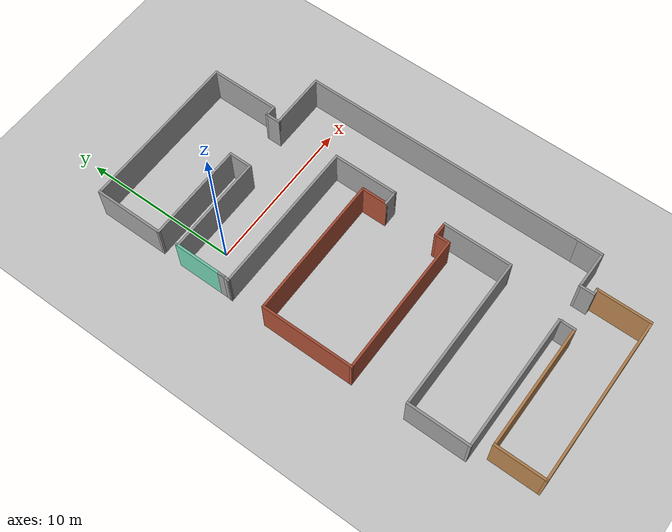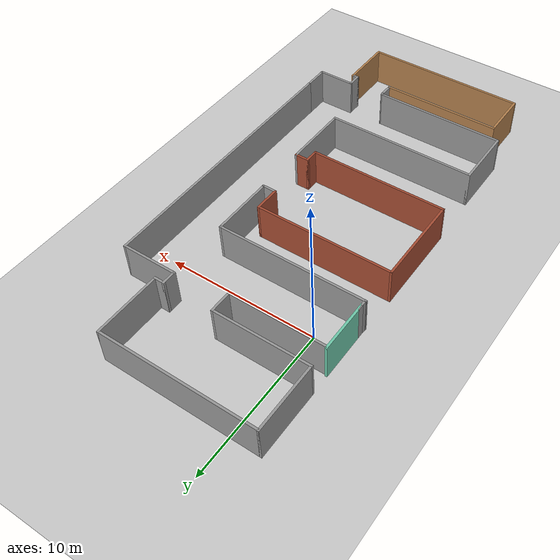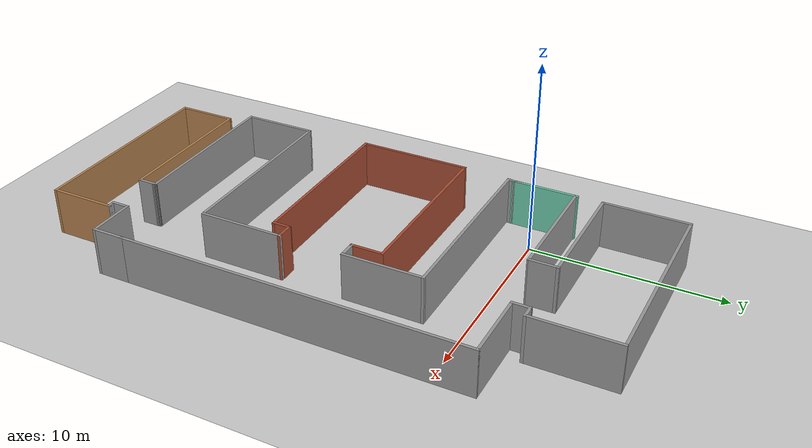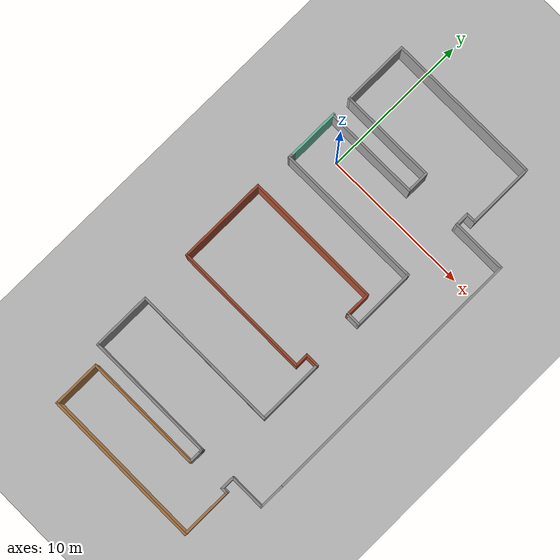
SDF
<sdf version="1.7">
 <world name="lab_world">
  <gravity>0 0 -9.8</gravity>
  <model name="ground_plane">
   <static>1</static>
   <link name="link">
    <collision name="collision">
     <geometry><plane><normal>0 0 1</normal><size>100 100</size></plane></geometry>
     <surface><friction><ode><mu>100</mu><mu2>50</mu2></ode></friction></surface>
    </collision>
    <visual name="visual">
     <cast_shadows>0</cast_shadows>
     <geometry><plane><normal>0 0 1</normal><size>100 100</size></plane></geometry>
     <material>
      <script><uri>file://media/materials/scripts/gazebo.material</uri><name>Gazebo/Grey</name></script>
     </material>
    </visual>
   </link>
  </model>
  <light name="sun" type="directional">
   <pose>0 0 10 0 -0 0</pose>
   <diffuse>0.8 0.8 0.8 1</diffuse>
   <specular>0.2 0.2 0.2 1</specular>
   <attenuation>
    <range>1000</range>
    <constant>0.9</constant>
    <linear>0.01</linear>
    <quadratic>0.001</quadratic>
   </attenuation>
   <direction>-0.5 0.1 -0.9</direction>
   <spot><inner_angle>0</inner_angle><outer_angle>0</outer_angle><falloff>0</falloff></spot>
  </light>
  <magnetic_field>6e-06 2.3e-05 -4.2e-05</magnetic_field>
  <atmosphere type="adiabatic"/>
  <physics type="ode">
   <max_step_size>0.001</max_step_size>
   <real_time_factor>1</real_time_factor>
   <real_time_update_rate>1000</real_time_update_rate>
  </physics>
  <scene><ambient>0.4 0.4 0.4 1</ambient><background>0.7 0.7 0.7 1</background><shadows>1</shadows></scene>
  <spherical_coordinates>
   <surface_model>EARTH_WGS84</surface_model>
   <latitude_deg>0</latitude_deg>
   <longitude_deg>0</longitude_deg>
   <elevation>0</elevation>
   <heading_deg>0</heading_deg>
  </spherical_coordinates>
  <model name="env03">
   <pose>4.66706 -7.23279 0 0 -0 0</pose>
   <link name="Wall_11">
    <collision name="Wall_11_Collision">
     <geometry><box><size>4.5 0.15 2.5</size></box></geometry>
     <pose>0 0 1.25 0 -0 0</pose>
    </collision>
    <visual name="Wall_11_Visual">
     <pose>0 0 1.25 0 -0 0</pose>
     <geometry><box><size>4.5 0.15 2.5</size></box></geometry>
     <material>
      <script><uri>file://media/materials/scripts/gazebo.material</uri><name>Gazebo/Grey</name></script>
      <ambient>1 1 1 1</ambient>
     </material>
     <meta><layer>0</layer></meta>
    </visual>
    <pose>3.73794 12.375 0 0 -0 -1.5708</pose>
   </link>
   <link name="Wall_12">
    <collision name="Wall_12_Collision">
     <geometry><box><size>0.75 0.15 2.5</size></box></geometry>
     <pose>0 0 1.25 0 -0 0</pose>
    </collision>
    <visual name="Wall_12_Visual">
     <pose>0 0 1.25 0 -0 0</pose>
     <geometry><box><size>0.75 0.15 2.5</size></box></geometry>
     <material>
      <script><uri>file://media/materials/scripts/gazebo.material</uri><name>Gazebo/Grey</name></script>
      <ambient>1 1 1 1</ambient>
     </material>
     <meta><layer>0</layer></meta>
    </visual>
    <pose>3.43794 10.2 0 0 -0 3.14159</pose>
   </link>
   <link name="Wall_13">
    <collision name="Wall_13_Collision">
     <geometry><box><size>1 0.15 2.5</size></box></geometry>
     <pose>0 0 1.25 0 -0 0</pose>
    </collision>
    <visual name="Wall_13_Visual">
     <pose>0 0 1.25 0 -0 0</pose>
     <geometry><box><size>1 0.15 2.5</size></box></geometry>
     <material>
      <script><uri>file://media/materials/scripts/gazebo.material</uri><name>Gazebo/Grey</name></script>
      <ambient>1 1 1 1</ambient>
     </material>
     <meta><layer>0</layer></meta>
    </visual>
    <pose>3.13794 9.775 0 0 -0 -1.5708</pose>
   </link>
   <link name="Wall_14">
    <collision name="Wall_14_Collision">
     <geometry><box><size>3.75 0.15 2.5</size></box></geometry>
     <pose>0 0 1.25 0 -0 0</pose>
    </collision>
    <visual name="Wall_14_Visual">
     <pose>0 0 1.25 0 -0 0</pose>
     <geometry><box><size>3.75 0.15 2.5</size></box></geometry>
     <material>
      <script><uri>file://media/materials/scripts/gazebo.material</uri><name>Gazebo/Grey</name></script>
      <ambient>1 1 1 1</ambient>
     </material>
     <meta><layer>0</layer></meta>
    </visual>
    <pose>4.93794 9.35 0 0 -0 0</pose>
   </link>
   <link name="Wall_15">
    <collision name="Wall_15_Collision">
     <geometry><box><size>18.25 0.15 2.5</size></box></geometry>
     <pose>0 0 1.25 0 -0 0</pose>
    </collision>
    <visual name="Wall_15_Visual">
     <pose>0 0 1.25 0 -0 0</pose>
     <geometry><box><size>18.25 0.15 2.5</size></box></geometry>
     <material>
      <script><uri>file://media/materials/scripts/gazebo.material</uri><name>Gazebo/Grey</name></script>
      <ambient>1 1 1 1</ambient>
     </material>
     <meta><layer>0</layer></meta>
    </visual>
    <pose>6.73794 0.3 0 0 -0 -1.5708</pose>
   </link>
   <link name="Wall_16">
    <collision name="Wall_16_Collision">
     <geometry><box><size>1.75 0.15 2.5</size></box></geometry>
     <pose>0 0 1.25 0 -0 0</pose>
    </collision>
    <visual name="Wall_16_Visual">
     <pose>0 0 1.25 0 -0 0</pose>
     <geometry><box><size>1.75 0.15 2.5</size></box></geometry>
     <material>
      <script><uri>file://media/materials/scripts/gazebo.material</uri><name>Gazebo/Grey</name></script>
      <ambient>1 1 1 1</ambient>
     </material>
     <meta><layer>0</layer></meta>
    </visual>
    <pose>6.73794 -9.55 0 0 -0 -1.5708</pose>
   </link>
   <link name="Wall_17">
    <collision name="Wall_17_Collision">
     <geometry><box><size>2.5 0.15 2.5</size></box></geometry>
     <pose>0 0 1.25 0 -0 0</pose>
    </collision>
    <visual name="Wall_17_Visual">
     <pose>0 0 1.25 0 -0 0</pose>
     <geometry><box><size>2.5 0.15 2.5</size></box></geometry>
     <material>
      <script><uri>file://media/materials/scripts/gazebo.material</uri><name>Gazebo/Grey</name></script>
      <ambient>1 1 1 1</ambient>
     </material>
     <meta><layer>0</layer></meta>
    </visual>
    <pose>5.56294 -10.35 0 0 -0 3.14159</pose>
   </link>
   <link name="Wall_18">
    <collision name="Wall_18_Collision">
     <geometry><box><size>1 0.15 2.5</size></box></geometry>
     <pose>0 0 1.25 0 -0 0</pose>
    </collision>
    <visual name="Wall_18_Visual">
     <pose>0 0 1.25 0 -0 0</pose>
     <geometry><box><size>1 0.15 2.5</size></box></geometry>
     <material>
      <script><uri>file://media/materials/scripts/gazebo.material</uri><name>Gazebo/Grey</name></script>
      <ambient>1 1 1 1</ambient>
     </material>
     <meta><layer>0</layer></meta>
    </visual>
    <pose>4.38794 -10.775 0 0 -0 -1.5708</pose>
   </link>
   <link name="Wall_19">
    <collision name="Wall_19_Collision">
     <geometry><box><size>0.5 0.15 2.5</size></box></geometry>
     <pose>0 0 1.25 0 -0 0</pose>
    </collision>
    <visual name="Wall_19_Visual">
     <pose>0 0 1.25 0 -0 0</pose>
     <geometry><box><size>0.5 0.15 2.5</size></box></geometry>
     <material>
      <script><uri>file://media/materials/scripts/gazebo.material</uri><name>Gazebo/Grey</name></script>
      <ambient>1 1 1 1</ambient>
     </material>
     <meta><layer>0</layer></meta>
    </visual>
    <pose>4.56294 -11.2 0 0 -0 0</pose>
   </link>
   <link name="Wall_2">
    <collision name="Wall_2_Collision">
     <geometry><box><size>0.5 0.15 2.5</size></box></geometry>
     <pose>0 0 1.25 0 -0 0</pose>
    </collision>
    <visual name="Wall_2_Visual">
     <pose>0 0 1.25 0 -0 0</pose>
     <geometry><box><size>0.5 0.15 2.5</size></box></geometry>
     <material>
      <script><uri>file://media/materials/scripts/gazebo.material</uri><name>Gazebo/Grey</name></script>
      <ambient>1 1 1 1</ambient>
     </material>
     <meta><layer>0</layer></meta>
    </visual>
    <pose>-6.61206 5.675 0 0 -0 -1.5708</pose>
   </link>
   <link name="Wall_22">
    <collision name="Wall_22_Collision">
     <geometry><box><size>3.5 0.15 2.5</size></box></geometry>
     <pose>0 0 1.25 0 -0 0</pose>
    </collision>
    <visual name="Wall_22_Visual">
     <pose>0 0 1.25 0 -0 0</pose>
     <geometry><box><size>3.5 0.15 2.5</size></box></geometry>
     <material>
      <script><uri>file://media/materials/scripts/gazebo.material</uri><name>Gazebo/Wood</name></script>
      <ambient>1 1 1 1</ambient>
     </material>
     <meta><layer>0</layer></meta>
    </visual>
    <pose>4.73794 -12.875 0 0 -0 -1.5708</pose>
   </link>
   <link name="Wall_23">
    <collision name="Wall_23_Collision">
     <geometry><box><size>10.75 0.15 2.5</size></box></geometry>
     <pose>0 0 1.25 0 -0 0</pose>
    </collision>
    <visual name="Wall_23_Visual">
     <pose>0 0 1.25 0 -0 0</pose>
     <geometry><box><size>10.75 0.15 2.5</size></box></geometry>
     <material>
      <script><uri>file://media/materials/scripts/gazebo.material</uri><name>Gazebo/Wood</name></script>
      <ambient>1 1 1 1</ambient>
     </material>
     <meta><layer>0</layer></meta>
    </visual>
    <pose>-0.562059 -14.55 0 0 -0 3.14159</pose>
   </link>
   <link name="Wall_24">
    <collision name="Wall_24_Collision">
     <geometry><box><size>3.25 0.15 2.5</size></box></geometry>
     <pose>0 0 1.25 0 -0 0</pose>
    </collision>
    <visual name="Wall_24_Visual">
     <pose>0 0 1.25 0 -0 0</pose>
     <geometry><box><size>3.25 0.15 2.5</size></box></geometry>
     <material>
      <script><uri>file://media/materials/scripts/gazebo.material</uri><name>Gazebo/Wood</name></script>
      <ambient>1 1 1 1</ambient>
     </material>
     <meta><layer>0</layer></meta>
    </visual>
    <pose>-5.86206 -13 0 0 -0 1.5708</pose>
   </link>
   <link name="Wall_25">
    <collision name="Wall_25_Collision">
     <geometry><box><size>8 0.15 2.5</size></box></geometry>
     <pose>0 0 1.25 0 -0 0</pose>
    </collision>
    <visual name="Wall_25_Visual">
     <pose>0 0 1.25 0 -0 0</pose>
     <geometry><box><size>8 0.15 2.5</size></box></geometry>
     <material>
      <script><uri>file://media/materials/scripts/gazebo.material</uri><name>Gazebo/Wood</name></script>
      <ambient>1 1 1 1</ambient>
     </material>
     <meta><layer>0</layer></meta>
    </visual>
    <pose>-1.93706 -11.45 0 0 -0 0</pose>
   </link>
   <link name="Wall_26">
    <collision name="Wall_26_Collision">
     <geometry><box><size>1 0.15 2.5</size></box></geometry>
     <pose>0 0 1.25 0 -0 0</pose>
    </collision>
    <visual name="Wall_26_Visual">
     <pose>0 0 1.25 0 -0 0</pose>
     <geometry><box><size>1 0.15 2.5</size></box></geometry>
     <material>
      <script><uri>file://media/materials/scripts/gazebo.material</uri><name>Gazebo/Grey</name></script>
      <ambient>1 1 1 1</ambient>
     </material>
     <meta><layer>0</layer></meta>
    </visual>
    <pose>1.98794 -11.025 0 0 -0 1.5708</pose>
   </link>
   <link name="Wall_27">
    <collision name="Wall_27_Collision">
     <geometry><box><size>0.25 0.15 2.5</size></box></geometry>
     <pose>0 0 1.25 0 -0 0</pose>
    </collision>
    <visual name="Wall_27_Visual">
     <pose>0 0 1.25 0 -0 0</pose>
     <geometry><box><size>0.25 0.15 2.5</size></box></geometry>
     <material>
      <script><uri>file://media/materials/scripts/gazebo.material</uri><name>Gazebo/Grey</name></script>
      <ambient>1 1 1 1</ambient>
     </material>
     <meta><layer>0</layer></meta>
    </visual>
    <pose>1.975 -10.5517 0 0 -0 1.8326</pose>
   </link>
   <link name="Wall_28">
    <collision name="Wall_28_Collision">
     <geometry><box><size>8.75 0.15 2.5</size></box></geometry>
     <pose>0 0 1.25 0 -0 0</pose>
    </collision>
    <visual name="Wall_28_Visual">
     <pose>0 0 1.25 0 -0 0</pose>
     <geometry><box><size>8.75 0.15 2.5</size></box></geometry>
     <material>
      <script><uri>file://media/materials/scripts/gazebo.material</uri><name>Gazebo/Grey</name></script>
      <ambient>1 1 1 1</ambient>
     </material>
     <meta><layer>0</layer></meta>
    </visual>
    <pose>-2.33794 -10.5034 0 0 -0 3.14159</pose>
   </link>
   <link name="Wall_29">
    <collision name="Wall_29_Collision">
     <geometry><box><size>4 0.15 2.5</size></box></geometry>
     <pose>0 0 1.25 0 -0 0</pose>
    </collision>
    <visual name="Wall_29_Visual">
     <pose>0 0 1.25 0 -0 0</pose>
     <geometry><box><size>4 0.15 2.5</size></box></geometry>
     <material>
      <script><uri>file://media/materials/scripts/gazebo.material</uri><name>Gazebo/Grey</name></script>
      <ambient>1 1 1 1</ambient>
     </material>
     <meta><layer>0</layer></meta>
    </visual>
    <pose>-6.63794 -8.57841 0 0 -0 1.5708</pose>
   </link>
   <link name="Wall_30">
    <collision name="Wall_30_Collision">
     <geometry><box><size>10 0.15 2.5</size></box></geometry>
     <pose>0 0 1.25 0 -0 0</pose>
    </collision>
    <visual name="Wall_30_Visual">
     <pose>0 0 1.25 0 -0 0</pose>
     <geometry><box><size>10 0.15 2.5</size></box></geometry>
     <material>
      <script><uri>file://media/materials/scripts/gazebo.material</uri><name>Gazebo/Grey</name></script>
      <ambient>1 1 1 1</ambient>
     </material>
     <meta><layer>0</layer></meta>
    </visual>
    <pose>-1.71294 -6.65341 0 0 -0 0</pose>
   </link>
   <link name="Wall_31">
    <collision name="Wall_31_Collision">
     <geometry><box><size>4.5 0.15 2.5</size></box></geometry>
     <pose>0 0 1.25 0 -0 0</pose>
    </collision>
    <visual name="Wall_31_Visual">
     <pose>0 0 1.25 0 -0 0</pose>
     <geometry><box><size>4.5 0.15 2.5</size></box></geometry>
     <material>
      <script><uri>file://media/materials/scripts/gazebo.material</uri><name>Gazebo/Grey</name></script>
      <ambient>1 1 1 1</ambient>
     </material>
     <meta><layer>0</layer></meta>
    </visual>
    <pose>3.21206 -4.47841 0 0 -0 1.5708</pose>
   </link>
   <link name="Wall_32">
    <collision name="Wall_32_Collision">
     <geometry><box><size>1 0.15 2.5</size></box></geometry>
     <pose>0 0 1.25 0 -0 0</pose>
    </collision>
    <visual name="Wall_32_Visual">
     <pose>0 0 1.25 0 -0 0</pose>
     <geometry><box><size>1 0.15 2.5</size></box></geometry>
     <material>
      <script><uri>file://media/materials/scripts/gazebo.material</uri><name>Gazebo/Bricks</name></script>
      <ambient>1 1 1 1</ambient>
     </material>
     <meta><layer>0</layer></meta>
    </visual>
    <pose>2.78706 -2.30341 0 0 -0 3.14159</pose>
   </link>
   <link name="Wall_33">
    <collision name="Wall_33_Collision">
     <geometry><box><size>1 0.15 2.5</size></box></geometry>
     <pose>0 0 1.25 0 -0 0</pose>
    </collision>
    <visual name="Wall_33_Visual">
     <pose>0 0 1.25 0 -0 0</pose>
     <geometry><box><size>1 0.15 2.5</size></box></geometry>
     <material>
      <script><uri>file://media/materials/scripts/gazebo.material</uri><name>Gazebo/Bricks</name></script>
      <ambient>1 1 1 1</ambient>
     </material>
     <meta><layer>0</layer></meta>
    </visual>
    <pose>2.36206 -2.72841 0 0 -0 -1.5708</pose>
   </link>
   <link name="Wall_34">
    <collision name="Wall_34_Collision">
     <geometry><box><size>9.25 0.15 2.5</size></box></geometry>
     <pose>0 0 1.25 0 -0 0</pose>
    </collision>
    <visual name="Wall_34_Visual">
     <pose>0 0 1.25 0 -0 0</pose>
     <geometry><box><size>9.25 0.15 2.5</size></box></geometry>
     <material>
      <script><uri>file://media/materials/scripts/gazebo.material</uri><name>Gazebo/Bricks</name></script>
      <ambient>1 1 1 1</ambient>
     </material>
     <meta><layer>0</layer></meta>
    </visual>
    <pose>-2.18794 -3.15341 0 0 -0 3.14159</pose>
   </link>
   <link name="Wall_35">
    <collision name="Wall_35_Collision">
     <geometry><box><size>6 0.15 2.5</size></box></geometry>
     <pose>0 0 1.25 0 -0 0</pose>
    </collision>
    <visual name="Wall_35_Visual">
     <pose>0 0 1.25 0 -0 0</pose>
     <geometry><box><size>6 0.15 2.5</size></box></geometry>
     <material>
      <script><uri>file://media/materials/scripts/gazebo.material</uri><name>Gazebo/Bricks</name></script>
      <ambient>1 1 1 1</ambient>
     </material>
     <meta><layer>0</layer></meta>
    </visual>
    <pose>-6.73794 -0.228407 0 0 -0 1.5708</pose>
   </link>
   <link name="Wall_36">
    <collision name="Wall_36_Collision">
     <geometry><box><size>9.25 0.15 2.5</size></box></geometry>
     <pose>0 0 1.25 0 -0 0</pose>
    </collision>
    <visual name="Wall_36_Visual">
     <pose>0 0 1.25 0 -0 0</pose>
     <geometry><box><size>9.25 0.15 2.5</size></box></geometry>
     <material>
      <script><uri>file://media/materials/scripts/gazebo.material</uri><name>Gazebo/Bricks</name></script>
      <ambient>1 1 1 1</ambient>
     </material>
     <meta><layer>0</layer></meta>
    </visual>
    <pose>-2.18794 2.69659 0 0 -0 0</pose>
   </link>
   <link name="Wall_37">
    <collision name="Wall_37_Collision">
     <geometry><box><size>1.75 0.15 2.5</size></box></geometry>
     <pose>0 0 1.25 0 -0 0</pose>
    </collision>
    <visual name="Wall_37_Visual">
     <pose>0 0 1.25 0 -0 0</pose>
     <geometry><box><size>1.75 0.15 2.5</size></box></geometry>
     <material>
      <script><uri>file://media/materials/scripts/gazebo.material</uri><name>Gazebo/Bricks</name></script>
      <ambient>1 1 1 1</ambient>
     </material>
     <meta><layer>0</layer></meta>
    </visual>
    <pose>2.36206 1.89659 0 0 -0 -1.5708</pose>
   </link>
   <link name="Wall_38">
    <collision name="Wall_38_Collision">
     <geometry><box><size>1 0.15 2.5</size></box></geometry>
     <pose>0 0 1.25 0 -0 0</pose>
    </collision>
    <visual name="Wall_38_Visual">
     <pose>0 0 1.25 0 -0 0</pose>
     <geometry><box><size>1 0.15 2.5</size></box></geometry>
     <material>
      <script><uri>file://media/materials/scripts/gazebo.material</uri><name>Gazebo/Grey</name></script>
      <ambient>1 1 1 1</ambient>
     </material>
     <meta><layer>0</layer></meta>
    </visual>
    <pose>2.78706 1.09659 0 0 -0 0</pose>
   </link>
   <link name="Wall_39">
    <collision name="Wall_39_Collision">
     <geometry><box><size>4.25 0.15 2.5</size></box></geometry>
     <pose>0 0 1.25 0 -0 0</pose>
    </collision>
    <visual name="Wall_39_Visual">
     <pose>0 0 1.25 0 -0 0</pose>
     <geometry><box><size>4.25 0.15 2.5</size></box></geometry>
     <material>
      <script><uri>file://media/materials/scripts/gazebo.material</uri><name>Gazebo/Grey</name></script>
      <ambient>1 1 1 1</ambient>
     </material>
     <meta><layer>0</layer></meta>
    </visual>
    <pose>3.21206 3.14659 0 0 -0 1.5708</pose>
   </link>
   <link name="Wall_4">
    <collision name="Wall_4_Collision">
     <geometry><box><size>3.51028 0.15 2.5</size></box></geometry>
     <pose>0 0 1.25 0 -0 0</pose>
    </collision>
    <visual name="Wall_4_Visual">
     <pose>0 0 1.25 0 -0 0</pose>
     <geometry><box><size>3.51028 0.15 2.5</size></box></geometry>
     <material>
      <script><uri>file://media/materials/scripts/gazebo.material</uri><name>Gazebo/Grey</name></script>
      <ambient>0.435294 0.796078 0.67451 1</ambient>
     </material>
     <meta><layer>0</layer></meta>
    </visual>
    <pose>-6.61206 7.18014 0 0 -0 1.5708</pose>
   </link>
   <link name="Wall_40">
    <collision name="Wall_40_Collision">
     <geometry><box><size>10 0.15 2.5</size></box></geometry>
     <pose>0 0 1.25 0 -0 0</pose>
    </collision>
    <visual name="Wall_40_Visual">
     <pose>0 0 1.25 0 -0 0</pose>
     <geometry><box><size>10 0.15 2.5</size></box></geometry>
     <material>
      <script><uri>file://media/materials/scripts/gazebo.material</uri><name>Gazebo/Grey</name></script>
      <ambient>1 1 1 1</ambient>
     </material>
     <meta><layer>0</layer></meta>
    </visual>
    <pose>-1.71294 5.19659 0 0 -0 3.14159</pose>
   </link>
   <link name="Wall_41">
    <collision name="Wall_41_Collision">
     <geometry><box><size>0.454509 0.15 2.5</size></box></geometry>
     <pose>0 0 1.25 0 -0 0</pose>
    </collision>
    <visual name="Wall_41_Visual">
     <pose>0 0 1.25 0 -0 0</pose>
     <geometry><box><size>0.454509 0.15 2.5</size></box></geometry>
     <material>
      <script><uri>file://media/materials/scripts/gazebo.material</uri><name>Gazebo/Grey</name></script>
      <ambient>1 1 1 1</ambient>
     </material>
     <meta><layer>0</layer></meta>
    </visual>
    <pose>-6.625 5.3483 0 0 -0 1.4857</pose>
   </link>
   <link name="Wall_5">
    <collision name="Wall_5_Collision">
     <geometry><box><size>6.5 0.15 2.5</size></box></geometry>
     <pose>0 0 1.25 0 -0 0</pose>
    </collision>
    <visual name="Wall_5_Visual">
     <pose>0 0 1.25 0 -0 0</pose>
     <geometry><box><size>6.5 0.15 2.5</size></box></geometry>
     <material>
      <script><uri>file://media/materials/scripts/gazebo.material</uri><name>Gazebo/Grey</name></script>
      <ambient>1 1 1 1</ambient>
     </material>
     <meta><layer>0</layer></meta>
    </visual>
    <pose>-3.43706 8.79032 0 0 -0 0</pose>
   </link>
   <link name="Wall_6">
    <collision name="Wall_6_Collision">
     <geometry><box><size>1.48972 0.15 2.5</size></box></geometry>
     <pose>0 0 1.25 0 -0 0</pose>
    </collision>
    <visual name="Wall_6_Visual">
     <pose>0 0 1.25 0 -0 0</pose>
     <geometry><box><size>1.48972 0.15 2.5</size></box></geometry>
     <material>
      <script><uri>file://media/materials/scripts/gazebo.material</uri><name>Gazebo/Grey</name></script>
      <ambient>1 1 1 1</ambient>
     </material>
     <meta><layer>0</layer></meta>
    </visual>
    <pose>-0.262059 9.53014 0 0 -0 1.5708</pose>
   </link>
   <link name="Wall_7">
    <collision name="Wall_7_Collision">
     <geometry><box><size>6.5 0.15 2.5</size></box></geometry>
     <pose>0 0 1.25 0 -0 0</pose>
    </collision>
    <visual name="Wall_7_Visual">
     <pose>0 0 1.25 0 -0 0</pose>
     <geometry><box><size>6.5 0.15 2.5</size></box></geometry>
     <material>
      <script><uri>file://media/materials/scripts/gazebo.material</uri><name>Gazebo/Grey</name></script>
      <ambient>1 1 1 1</ambient>
     </material>
     <meta><layer>0</layer></meta>
    </visual>
    <pose>-3.43706 10.2 0 0 -0 3.14159</pose>
   </link>
   <link name="Wall_8">
    <collision name="Wall_8_Collision">
     <geometry><box><size>4.5 0.15 2.5</size></box></geometry>
     <pose>0 0 1.25 0 -0 0</pose>
    </collision>
    <visual name="Wall_8_Visual">
     <pose>0 0 1.25 0 -0 0</pose>
     <geometry><box><size>4.5 0.15 2.5</size></box></geometry>
     <material>
      <script><uri>file://media/materials/scripts/gazebo.material</uri><name>Gazebo/Grey</name></script>
      <ambient>1 1 1 1</ambient>
     </material>
     <meta><layer>0</layer></meta>
    </visual>
    <pose>-6.61206 12.375 0 0 -0 1.5708</pose>
   </link>
   <link name="Wall_9">
    <collision name="Wall_9_Collision">
     <geometry><box><size>10.5 0.15 2.5</size></box></geometry>
     <pose>0 0 1.25 0 -0 0</pose>
    </collision>
    <visual name="Wall_9_Visual">
     <pose>0 0 1.25 0 -0 0</pose>
     <geometry><box><size>10.5 0.15 2.5</size></box></geometry>
     <material>
      <script><uri>file://media/materials/scripts/gazebo.material</uri><name>Gazebo/Grey</name></script>
      <ambient>1 1 1 1</ambient>
     </material>
     <meta><layer>0</layer></meta>
    </visual>
    <pose>-1.43706 14.55 0 0 -0 0</pose>
   </link>
   <static>1</static>
  </model>
 </world>
</sdf>
